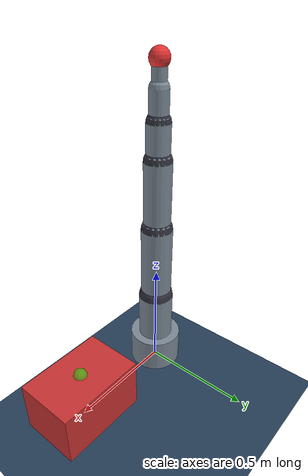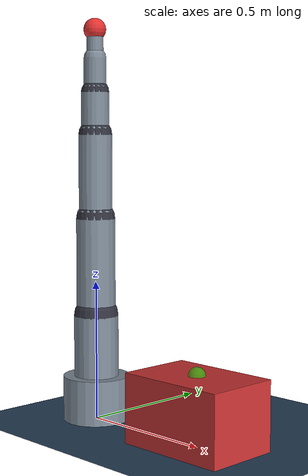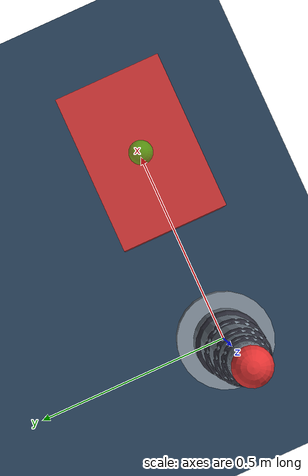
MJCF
<mujoco model="jaka_zu35">
  <compiler angle="radian" meshdir="." autolimits="true"/>

  <include file="ground.xml"/>
  <include file="box_cola24.xml"/>

  <option timestep="0.004" iterations="50" tolerance="1e-10" solver="Newton" gravity="0 0 -9.81">
    <flag warmstart="enable"/>
  </option>

  <asset>
    <material name="link_gray" rgba="0.5 0.55 0.6 1.0" specular="0.4" shininess="0.3"/>
    <material name="joint_dark" rgba="0.2 0.2 0.25 1.0" specular="0.5" shininess="0.5"/>
    <material name="ee_red" rgba="0.9 0.2 0.2 1.0" specular="0.3" shininess="0.3"/>
  </asset>

  <!-- Adjacent parent-child links share a joint and are allowed to overlap visually. -->
  <contact>
    <exclude body1="base" body2="link1"/>
    <exclude body1="link1" body2="link2"/>
    <exclude body1="link2" body2="link3"/>
    <exclude body1="link3" body2="link4"/>
    <exclude body1="link4" body2="link5"/>
    <exclude body1="link5" body2="link6"/>
  </contact>

  <worldbody>
    <!-- Base -->
    <body name="base" pos="0 0 0">
      <geom name="base_cylinder" type="cylinder" size="0.12 0.08" pos="0 0 0.08" material="link_gray" mass="5.0"/>

      <!-- Link 1 (rotates around Z) -->
      <body name="link1" pos="0 0 0.08">
        <joint name="joint_1" type="hinge" axis="0 0 1" range="-3.14159 3.14159" damping="2.0" armature="0.1"/>
        <geom name="link1_cylinder" type="cylinder" size="0.08 0.15" pos="0 0 0.15" material="link_gray" mass="3.0"/>
        <geom name="link1_joint_sphere" type="sphere" size="0.07" material="joint_dark" mass="0.5"/>

        <!-- Link 2 -->
        <body name="link2" pos="0 0 0.30">
          <joint name="joint_2" type="hinge" axis="0 1 0" range="-1.5708 1.5708" damping="2.0" armature="0.1"/>
          <geom name="link2_capsule" type="capsule" size="0.07" fromto="0 0 0 0 0 0.35" material="link_gray" mass="3.0"/>
          <geom name="link2_joint_sphere" type="sphere" size="0.08" material="joint_dark" mass="0.5"/>

          <!-- Link 3 -->
          <body name="link3" pos="0 0 0.35">
            <joint name="joint_3" type="hinge" axis="0 1 0" range="-1.5708 1.5708" damping="2.0" armature="0.1"/>
            <geom name="link3_capsule" type="capsule" size="0.06" fromto="0 0 0 0 0 0.30" material="link_gray" mass="2.5"/>
            <geom name="link3_joint_sphere" type="sphere" size="0.07" material="joint_dark" mass="0.5"/>

            <!-- Link 4 (wrist roll) -->
            <body name="link4" pos="0 0 0.30">
              <joint name="joint_4" type="hinge" axis="0 0 1" range="-3.14159 3.14159" damping="1.0" armature="0.05"/>
              <geom name="link4_capsule" type="capsule" size="0.05" fromto="0 0 0 0 0 0.15" material="link_gray" mass="1.5"/>
              <geom name="link4_joint_sphere" type="sphere" size="0.06" material="joint_dark" mass="0.3"/>

              <!-- Link 5 -->
              <body name="link5" pos="0 0 0.15">
                <joint name="joint_5" type="hinge" axis="0 1 0" range="-1.5708 1.5708" damping="1.0" armature="0.05"/>
                <geom name="link5_capsule" type="capsule" size="0.04" fromto="0 0 0 0 0 0.12" material="link_gray" mass="1.0"/>
                <geom name="link5_joint_sphere" type="sphere" size="0.05" material="joint_dark" mass="0.2"/>

                <!-- Link 6 + end-effector -->
                <body name="link6" pos="0 0 0.12">
                  <joint name="joint_6" type="hinge" axis="0 0 1" range="-3.14159 3.14159" damping="1.0" armature="0.05"/>
                  <geom name="link6_capsule" type="capsule" size="0.03" fromto="0 0 0 0 0 0.08" material="link_gray" mass="0.5"/>
                  <site name="end_effector" pos="0 0 0.10" size="0.04" material="ee_red"/>
                </body>
              </body>
            </body>
          </body>
        </body>
      </body>
    </body>
  </worldbody>

  <actuator>
    <position joint="joint_1" kp="500" kv="50" ctrlrange="-3.14159 3.14159"/>
    <position joint="joint_2" kp="400" kv="40" ctrlrange="-1.5708 1.5708"/>
    <position joint="joint_3" kp="300" kv="30" ctrlrange="-1.5708 1.5708"/>
    <position joint="joint_4" kp="200" kv="20" ctrlrange="-3.14159 3.14159"/>
    <position joint="joint_5" kp="150" kv="15" ctrlrange="-1.5708 1.5708"/>
    <position joint="joint_6" kp="100" kv="10" ctrlrange="-3.14159 3.14159"/>
  </actuator>
</mujoco>

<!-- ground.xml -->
<mujocoinclude>
  <asset>
    <texture type="2d" name="groundplane" builtin="checker" mark="edge" rgb1="0.2 0.3 0.4" rgb2="0.1 0.2 0.3" markrgb="0.8 0.8 0.8" width="300" height="300"/>
    <material name="groundplane" texture="groundplane" texuniform="true" texrepeat="5 5" reflectance="0.2"/>
  </asset>
  <worldbody>
    <geom name="floor" type="plane" size="10 10 0.1" material="groundplane" condim="3" friction="1.0 0.005 0.0001" conaffinity="3"/>
    <light directional="true" diffuse=".8 .8 .8" specular="0.1 0.1 0.1" pos="0 0 5" dir="0 0 -1"/>
    <light directional="true" diffuse=".6 .6 .6" specular="0.2 0.2 0.2" pos="5 5 5" dir="-1 -1 -1"/>
  </worldbody>
</mujocoinclude>

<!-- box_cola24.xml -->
<mujocoinclude>
  <asset>
    <material name="box_cola24" rgba="0.8 0.2 0.2 1.0" specular="0.3" shininess="0.3"/>
  </asset>
  <worldbody>
    <body name="target_box" pos="0.5 0.0 0.12">
      <freejoint name="box_joint"/>
      <geom name="box_geom" type="box" size="0.2 0.135 0.12" material="box_cola24" mass="14.0" friction="1.0 0.005 0.0001"/>
      <site name="box_top" pos="0.0 0.0 0.12" size="0.03" rgba="0.0 1.0 0.0 0.5"/>
    </body>
  </worldbody>
</mujocoinclude>
